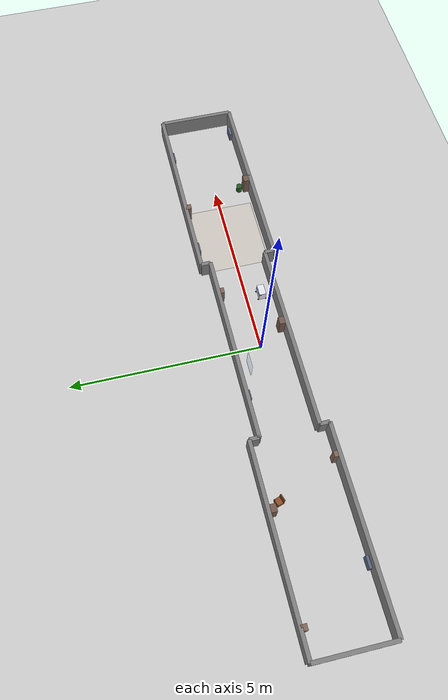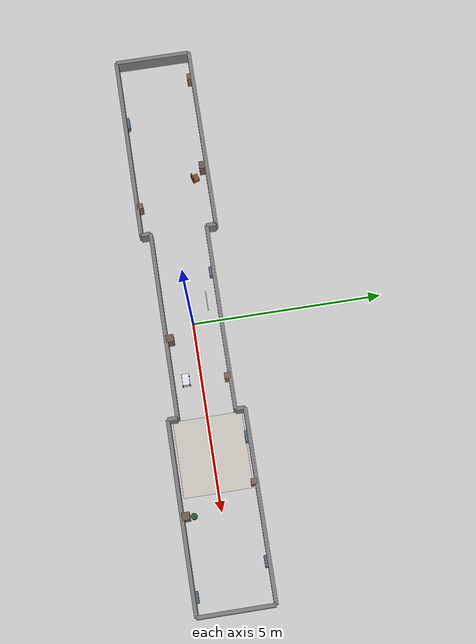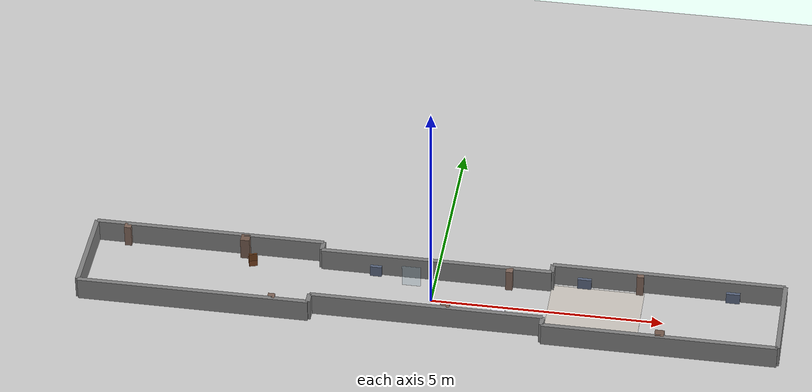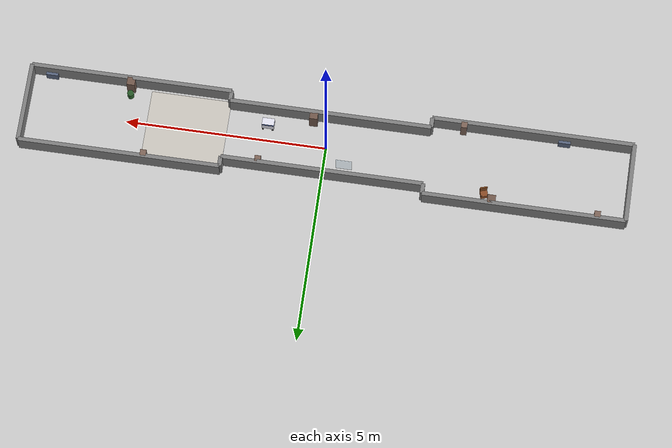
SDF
<?xml version="1.0" ?>
<sdf version="1.6">
  <world name="default">
    <plugin filename="libignition-gazebo-physics-system.so" name="ignition::gazebo::systems::Physics"/>
    <plugin filename="libignition-gazebo-user-commands-system.so" name="ignition::gazebo::systems::UserCommands"/>
    <plugin filename="libignition-gazebo-scene-broadcaster-system.so" name="ignition::gazebo::systems::SceneBroadcaster"/>
    <plugin filename="libignition-gazebo-imu-system.so" name="ignition::gazebo::systems::Imu"/>
    <plugin filename="libignition-gazebo-sensors-system.so" name="ignition::gazebo::systems::Sensors">
      <render_engine>ogre2</render_engine>
    </plugin>

    <light name="sun" type="directional">
      <pose>0 0 10 0 0.5 0</pose>
      <diffuse>1 1 1 1</diffuse>
      <specular>1 1 1 1</specular>
      <direction>-1 -1 -1</direction>
      <cast_shadows>true</cast_shadows>
    </light>

    <model name="ground_plane">
      <static>true</static>
      <link name="link">
        <collision name="collision">
          <geometry><plane><normal>0 0 1</normal><size>50 50</size></plane></geometry>
          <surface><friction><ode><mu>100</mu><mu2>50</mu2></ode></friction></surface>
        </collision>
        <visual name="visual">
          <geometry><plane><normal>0 0 1</normal><size>50 50</size></plane></geometry>
          <material>
            <ambient>0.8 0.8 0.8 1</ambient>
            <diffuse>0.8 0.8 0.8 1</diffuse>
            <specular>0.1 0.1 0.1 1</specular>
          </material>
        </visual>
      </link>
    </model>

    <!-- ===== WALLS ===== -->

    <!-- South wall: left section (x=-7.5 to -2.5, y=1.0, 2m wide) -->
    <model name="wall_south_left">
      <static>true</static>
      <pose>-5 1.0 0.25 0 0 0</pose>
      <link name="link">
        <collision name="collision"><geometry><box><size>5 0.1 0.5</size></box></geometry></collision>
        <visual name="visual">
          <geometry><box><size>5 0.1 0.5</size></box></geometry>
          <material><ambient>0.3 0.3 0.3 1</ambient><diffuse>0.5 0.5 0.5 1</diffuse><specular>0.1 0.1 0.1 1</specular></material>
        </visual>
      </link>
    </model>

    <!-- South wall: narrow section (x=-2.5 to +2.5, y=0.75, 1.5m wide) -->
    <model name="wall_south_narrow">
      <static>true</static>
      <pose>0 0.75 0.25 0 0 0</pose>
      <link name="link">
        <collision name="collision"><geometry><box><size>5 0.1 0.5</size></box></geometry></collision>
        <visual name="visual">
          <geometry><box><size>5 0.1 0.5</size></box></geometry>
          <material><ambient>0.3 0.3 0.3 1</ambient><diffuse>0.5 0.5 0.5 1</diffuse><specular>0.1 0.1 0.1 1</specular></material>
        </visual>
      </link>
    </model>

    <!-- South wall: right section (x=+2.5 to +7.5, y=1.0, 2m wide) -->
    <model name="wall_south_right">
      <static>true</static>
      <pose>5 1.0 0.25 0 0 0</pose>
      <link name="link">
        <collision name="collision"><geometry><box><size>5 0.1 0.5</size></box></geometry></collision>
        <visual name="visual">
          <geometry><box><size>5 0.1 0.5</size></box></geometry>
          <material><ambient>0.3 0.3 0.3 1</ambient><diffuse>0.5 0.5 0.5 1</diffuse><specular>0.1 0.1 0.1 1</specular></material>
        </visual>
      </link>
    </model>

    <!-- North wall: left section -->
    <model name="wall_north_left">
      <static>true</static>
      <pose>-5 -1.0 0.25 0 0 0</pose>
      <link name="link">
        <collision name="collision"><geometry><box><size>5 0.1 0.5</size></box></geometry></collision>
        <visual name="visual">
          <geometry><box><size>5 0.1 0.5</size></box></geometry>
          <material><ambient>0.3 0.3 0.3 1</ambient><diffuse>0.5 0.5 0.5 1</diffuse><specular>0.1 0.1 0.1 1</specular></material>
        </visual>
      </link>
    </model>

    <!-- North wall: narrow section -->
    <model name="wall_north_narrow">
      <static>true</static>
      <pose>0 -0.75 0.25 0 0 0</pose>
      <link name="link">
        <collision name="collision"><geometry><box><size>5 0.1 0.5</size></box></geometry></collision>
        <visual name="visual">
          <geometry><box><size>5 0.1 0.5</size></box></geometry>
          <material><ambient>0.3 0.3 0.3 1</ambient><diffuse>0.5 0.5 0.5 1</diffuse><specular>0.1 0.1 0.1 1</specular></material>
        </visual>
      </link>
    </model>

    <!-- North wall: right section -->
    <model name="wall_north_right">
      <static>true</static>
      <pose>5 -1.0 0.25 0 0 0</pose>
      <link name="link">
        <collision name="collision"><geometry><box><size>5 0.1 0.5</size></box></geometry></collision>
        <visual name="visual">
          <geometry><box><size>5 0.1 0.5</size></box></geometry>
          <material><ambient>0.3 0.3 0.3 1</ambient><diffuse>0.5 0.5 0.5 1</diffuse><specular>0.1 0.1 0.1 1</specular></material>
        </visual>
      </link>
    </model>

    <!-- Transition walls at width changes -->
    <model name="wall_trans_south_west">
      <static>true</static>
      <pose>-2.5 0.875 0.25 0 0 0</pose>
      <link name="link">
        <collision name="collision"><geometry><box><size>0.1 0.25 0.5</size></box></geometry></collision>
        <visual name="visual">
          <geometry><box><size>0.1 0.25 0.5</size></box></geometry>
          <material><ambient>0.3 0.3 0.3 1</ambient><diffuse>0.5 0.5 0.5 1</diffuse><specular>0.1 0.1 0.1 1</specular></material>
        </visual>
      </link>
    </model>
    <model name="wall_trans_south_east">
      <static>true</static>
      <pose>2.5 0.875 0.25 0 0 0</pose>
      <link name="link">
        <collision name="collision"><geometry><box><size>0.1 0.25 0.5</size></box></geometry></collision>
        <visual name="visual">
          <geometry><box><size>0.1 0.25 0.5</size></box></geometry>
          <material><ambient>0.3 0.3 0.3 1</ambient><diffuse>0.5 0.5 0.5 1</diffuse><specular>0.1 0.1 0.1 1</specular></material>
        </visual>
      </link>
    </model>
    <model name="wall_trans_north_west">
      <static>true</static>
      <pose>-2.5 -0.875 0.25 0 0 0</pose>
      <link name="link">
        <collision name="collision"><geometry><box><size>0.1 0.25 0.5</size></box></geometry></collision>
        <visual name="visual">
          <geometry><box><size>0.1 0.25 0.5</size></box></geometry>
          <material><ambient>0.3 0.3 0.3 1</ambient><diffuse>0.5 0.5 0.5 1</diffuse><specular>0.1 0.1 0.1 1</specular></material>
        </visual>
      </link>
    </model>
    <model name="wall_trans_north_east">
      <static>true</static>
      <pose>2.5 -0.875 0.25 0 0 0</pose>
      <link name="link">
        <collision name="collision"><geometry><box><size>0.1 0.25 0.5</size></box></geometry></collision>
        <visual name="visual">
          <geometry><box><size>0.1 0.25 0.5</size></box></geometry>
          <material><ambient>0.3 0.3 0.3 1</ambient><diffuse>0.5 0.5 0.5 1</diffuse><specular>0.1 0.1 0.1 1</specular></material>
        </visual>
      </link>
    </model>

    <!-- West end wall -->
    <model name="wall_west">
      <static>true</static>
      <pose>-7.5 0 0.25 0 0 0</pose>
      <link name="link">
        <collision name="collision"><geometry><box><size>0.1 2.0 0.5</size></box></geometry></collision>
        <visual name="visual">
          <geometry><box><size>0.1 2.0 0.5</size></box></geometry>
          <material><ambient>0.3 0.3 0.3 1</ambient><diffuse>0.5 0.5 0.5 1</diffuse><specular>0.1 0.1 0.1 1</specular></material>
        </visual>
      </link>
    </model>

    <!-- East end wall -->
    <model name="wall_east">
      <static>true</static>
      <pose>7.5 0 0.25 0 0 0</pose>
      <link name="link">
        <collision name="collision"><geometry><box><size>0.1 2.0 0.5</size></box></geometry></collision>
        <visual name="visual">
          <geometry><box><size>0.1 2.0 0.5</size></box></geometry>
          <material><ambient>0.3 0.3 0.3 1</ambient><diffuse>0.5 0.5 0.5 1</diffuse><specular>0.1 0.1 0.1 1</specular></material>
        </visual>
      </link>
    </model>

    <!-- ===== FEATURES: LEFT SECTION (x=-7.5 to -2.5) ===== -->
    <!-- Pattern: 2 south features, 2 north features, aperiodic gaps -->

    <!-- South wall: pillar at -6.8, large-pillar at -4.2 -->
    <model name="feat_1">
      <static>true</static>
      <pose>-6.8 0.925 0.25 0 0 0</pose>
      <link name="link">
        <collision name="collision"><geometry><box><size>0.15 0.15 0.5</size></box></geometry></collision>
        <visual name="visual">
          <geometry><box><size>0.15 0.15 0.5</size></box></geometry>
          <material><ambient>0.4 0.3 0.25 1</ambient><diffuse>0.5 0.4 0.35 1</diffuse></material>
        </visual>
      </link>
    </model>
    <model name="feat_2">
      <static>true</static>
      <pose>-4.2 0.90 0.25 0 0 0</pose>
      <link name="link">
        <collision name="collision"><geometry><box><size>0.20 0.20 0.5</size></box></geometry></collision>
        <visual name="visual">
          <geometry><box><size>0.20 0.20 0.5</size></box></geometry>
          <material><ambient>0.35 0.25 0.20 1</ambient><diffuse>0.45 0.35 0.30 1</diffuse></material>
        </visual>
      </link>
    </model>

    <!-- North wall: cabinet at -5.8, pillar at -3.3 -->
    <model name="feat_3">
      <static>true</static>
      <pose>-5.8 -0.94 0.125 0 0 0</pose>
      <link name="link">
        <collision name="collision"><geometry><box><size>0.3 0.12 0.25</size></box></geometry></collision>
        <visual name="visual">
          <geometry><box><size>0.3 0.12 0.25</size></box></geometry>
          <material><ambient>0.25 0.3 0.4 1</ambient><diffuse>0.35 0.4 0.5 1</diffuse></material>
        </visual>
      </link>
    </model>
    <model name="feat_4">
      <static>true</static>
      <pose>-3.3 -0.925 0.25 0 0 0</pose>
      <link name="link">
        <collision name="collision"><geometry><box><size>0.15 0.15 0.5</size></box></geometry></collision>
        <visual name="visual">
          <geometry><box><size>0.15 0.15 0.5</size></box></geometry>
          <material><ambient>0.4 0.3 0.25 1</ambient><diffuse>0.5 0.4 0.35 1</diffuse></material>
        </visual>
      </link>
    </model>

    <!-- ===== FEATURES: NARROW SECTION (x=-2.5 to +2.5) ===== -->
    <!-- Previously had ZERO features — added 3 to break symmetry -->

    <!-- South wall: cabinet at -1.3, pillar at 1.6 -->
    <model name="feat_5">
      <static>true</static>
      <pose>-1.3 0.69 0.125 0 0 0</pose>
      <link name="link">
        <collision name="collision"><geometry><box><size>0.25 0.12 0.25</size></box></geometry></collision>
        <visual name="visual">
          <geometry><box><size>0.25 0.12 0.25</size></box></geometry>
          <material><ambient>0.25 0.3 0.4 1</ambient><diffuse>0.35 0.4 0.5 1</diffuse></material>
        </visual>
      </link>
    </model>
    <model name="feat_6">
      <static>true</static>
      <pose>1.6 0.675 0.25 0 0 0</pose>
      <link name="link">
        <collision name="collision"><geometry><box><size>0.15 0.15 0.5</size></box></geometry></collision>
        <visual name="visual">
          <geometry><box><size>0.15 0.15 0.5</size></box></geometry>
          <material><ambient>0.4 0.3 0.25 1</ambient><diffuse>0.5 0.4 0.35 1</diffuse></material>
        </visual>
      </link>
    </model>

    <!-- North wall: large-pillar at 0.4 -->
    <model name="feat_7">
      <static>true</static>
      <pose>0.4 -0.65 0.25 0 0 0</pose>
      <link name="link">
        <collision name="collision"><geometry><box><size>0.20 0.20 0.5</size></box></geometry></collision>
        <visual name="visual">
          <geometry><box><size>0.20 0.20 0.5</size></box></geometry>
          <material><ambient>0.35 0.25 0.20 1</ambient><diffuse>0.45 0.35 0.30 1</diffuse></material>
        </visual>
      </link>
    </model>

    <!-- ===== FEATURES: RIGHT SECTION (x=+2.5 to +7.5) ===== -->
    <!-- DIFFERENT pattern from left: cabinet-pillar-cabinet on south, pillar on north -->
    <!-- Gaps: 1.2m, 2.0m (different from left's 2.6m gap) -->

    <!-- South wall: cabinet at 3.2, pillar at 4.4, cabinet at 6.4 -->
    <model name="feat_8">
      <static>true</static>
      <pose>3.2 0.94 0.125 0 0 0</pose>
      <link name="link">
        <collision name="collision"><geometry><box><size>0.3 0.12 0.25</size></box></geometry></collision>
        <visual name="visual">
          <geometry><box><size>0.3 0.12 0.25</size></box></geometry>
          <material><ambient>0.25 0.3 0.4 1</ambient><diffuse>0.35 0.4 0.5 1</diffuse></material>
        </visual>
      </link>
    </model>
    <model name="feat_9">
      <static>true</static>
      <pose>4.4 0.925 0.25 0 0 0</pose>
      <link name="link">
        <collision name="collision"><geometry><box><size>0.15 0.15 0.5</size></box></geometry></collision>
        <visual name="visual">
          <geometry><box><size>0.15 0.15 0.5</size></box></geometry>
          <material><ambient>0.4 0.3 0.25 1</ambient><diffuse>0.5 0.4 0.35 1</diffuse></material>
        </visual>
      </link>
    </model>
    <model name="feat_10">
      <static>true</static>
      <pose>6.4 0.94 0.125 0 0 0</pose>
      <link name="link">
        <collision name="collision"><geometry><box><size>0.3 0.12 0.25</size></box></geometry></collision>
        <visual name="visual">
          <geometry><box><size>0.3 0.12 0.25</size></box></geometry>
          <material><ambient>0.25 0.3 0.4 1</ambient><diffuse>0.35 0.4 0.5 1</diffuse></material>
        </visual>
      </link>
    </model>

    <!-- North wall: large-pillar at 5.0, cabinet at 7.0 -->
    <model name="feat_11">
      <static>true</static>
      <pose>5.0 -0.90 0.25 0 0 0</pose>
      <link name="link">
        <collision name="collision"><geometry><box><size>0.20 0.20 0.5</size></box></geometry></collision>
        <visual name="visual">
          <geometry><box><size>0.20 0.20 0.5</size></box></geometry>
          <material><ambient>0.35 0.25 0.20 1</ambient><diffuse>0.45 0.35 0.30 1</diffuse></material>
        </visual>
      </link>
    </model>
    <model name="feat_12">
      <static>true</static>
      <pose>7.0 -0.94 0.125 0 0 0</pose>
      <link name="link">
        <collision name="collision"><geometry><box><size>0.3 0.12 0.25</size></box></geometry></collision>
        <visual name="visual">
          <geometry><box><size>0.3 0.12 0.25</size></box></geometry>
          <material><ambient>0.25 0.3 0.4 1</ambient><diffuse>0.35 0.4 0.5 1</diffuse></material>
        </visual>
      </link>
    </model>
    <!-- ===== FURNITURE: VISUAL REALISM + DEPTH CHALLENGES ===== -->

    <!-- Chair: brown box (seat) + backrest, near south wall in left section.
         Leaves ~0.6m clearance on north side. -->
    <model name="chair">
      <static>true</static>
      <pose>-4.0 0.65 0 0 0 0.3</pose>
      <link name="link">
        <!-- Seat -->
        <collision name="seat_col"><geometry><box><size>0.18 0.18 0.15</size></box></geometry>
          <pose>0 0 0.075 0 0 0</pose></collision>
        <visual name="seat_vis"><geometry><box><size>0.18 0.18 0.15</size></box></geometry>
          <pose>0 0 0.075 0 0 0</pose>
          <material><ambient>0.45 0.25 0.10 1</ambient><diffuse>0.55 0.30 0.15 1</diffuse><specular>0.05 0.03 0.01 1</specular></material>
        </visual>
        <!-- Backrest -->
        <collision name="back_col"><geometry><box><size>0.18 0.03 0.18</size></box></geometry>
          <pose>0 -0.075 0.24 0 0 0</pose></collision>
        <visual name="back_vis"><geometry><box><size>0.18 0.03 0.18</size></box></geometry>
          <pose>0 -0.075 0.24 0 0 0</pose>
          <material><ambient>0.40 0.22 0.08 1</ambient><diffuse>0.50 0.28 0.12 1</diffuse><specular>0.05 0.03 0.01 1</specular></material>
        </visual>
        <!-- Legs (4x) -->
        <visual name="leg1"><geometry><cylinder><radius>0.01</radius><length>0.15</length></cylinder></geometry>
          <pose>0.07 0.07 0.075 0 0 0</pose>
          <material><ambient>0.2 0.2 0.2 1</ambient><diffuse>0.3 0.3 0.3 1</diffuse></material></visual>
        <visual name="leg2"><geometry><cylinder><radius>0.01</radius><length>0.15</length></cylinder></geometry>
          <pose>-0.07 0.07 0.075 0 0 0</pose>
          <material><ambient>0.2 0.2 0.2 1</ambient><diffuse>0.3 0.3 0.3 1</diffuse></material></visual>
        <visual name="leg3"><geometry><cylinder><radius>0.01</radius><length>0.15</length></cylinder></geometry>
          <pose>0.07 -0.07 0.075 0 0 0</pose>
          <material><ambient>0.2 0.2 0.2 1</ambient><diffuse>0.3 0.3 0.3 1</diffuse></material></visual>
        <visual name="leg4"><geometry><cylinder><radius>0.01</radius><length>0.15</length></cylinder></geometry>
          <pose>-0.07 -0.07 0.075 0 0 0</pose>
          <material><ambient>0.2 0.2 0.2 1</ambient><diffuse>0.3 0.3 0.3 1</diffuse></material></visual>
      </link>
    </model>

    <!-- Hospital cart: white/blue box on wheels, narrow section near north wall.
         Leaves ~0.7m clearance. -->
    <model name="hospital_cart">
      <static>true</static>
      <pose>1.5 -0.40 0 0 0 0</pose>
      <link name="link">
        <!-- Cart body -->
        <collision name="body_col"><geometry><box><size>0.30 0.18 0.25</size></box></geometry>
          <pose>0 0 0.175 0 0 0</pose></collision>
        <visual name="body_vis"><geometry><box><size>0.30 0.18 0.25</size></box></geometry>
          <pose>0 0 0.175 0 0 0</pose>
          <material><ambient>0.85 0.85 0.90 1</ambient><diffuse>0.90 0.90 0.95 1</diffuse><specular>0.3 0.3 0.3 1</specular></material>
        </visual>
        <!-- Blue stripe -->
        <visual name="stripe_vis"><geometry><box><size>0.30 0.19 0.03</size></box></geometry>
          <pose>0 0 0.26 0 0 0</pose>
          <material><ambient>0.15 0.25 0.55 1</ambient><diffuse>0.20 0.35 0.70 1</diffuse></material>
        </visual>
        <!-- Wheels (4x) -->
        <visual name="wh1"><geometry><cylinder><radius>0.02</radius><length>0.02</length></cylinder></geometry>
          <pose>0.12 0.10 0.02 1.5707 0 0</pose>
          <material><ambient>0.15 0.15 0.15 1</ambient><diffuse>0.2 0.2 0.2 1</diffuse></material></visual>
        <visual name="wh2"><geometry><cylinder><radius>0.02</radius><length>0.02</length></cylinder></geometry>
          <pose>-0.12 0.10 0.02 1.5707 0 0</pose>
          <material><ambient>0.15 0.15 0.15 1</ambient><diffuse>0.2 0.2 0.2 1</diffuse></material></visual>
        <visual name="wh3"><geometry><cylinder><radius>0.02</radius><length>0.02</length></cylinder></geometry>
          <pose>0.12 -0.10 0.02 1.5707 0 0</pose>
          <material><ambient>0.15 0.15 0.15 1</ambient><diffuse>0.2 0.2 0.2 1</diffuse></material></visual>
        <visual name="wh4"><geometry><cylinder><radius>0.02</radius><length>0.02</length></cylinder></geometry>
          <pose>-0.12 -0.10 0.02 1.5707 0 0</pose>
          <material><ambient>0.15 0.15 0.15 1</ambient><diffuse>0.2 0.2 0.2 1</diffuse></material></visual>
      </link>
    </model>

    <!-- Trash can: dark green cylinder, right section near north wall. -->
    <model name="trash_can">
      <static>true</static>
      <pose>5.0 -0.70 0.10 0 0 0</pose>
      <link name="link">
        <collision name="col"><geometry><cylinder><radius>0.08</radius><length>0.20</length></cylinder></geometry></collision>
        <visual name="vis"><geometry><cylinder><radius>0.08</radius><length>0.20</length></cylinder></geometry>
          <material><ambient>0.10 0.25 0.10 1</ambient><diffuse>0.15 0.35 0.15 1</diffuse><specular>0.05 0.05 0.05 1</specular></material>
        </visual>
      </link>
    </model>

    <model name="glass_panel">
      <static>true</static>
      <pose>-0.5 0.45 0.25 0 0 0</pose>
      <link name="link">
        <collision name="col"><geometry><box><size>0.40 0.02 0.50</size></box></geometry></collision>
        <visual name="vis"><geometry><box><size>0.40 0.02 0.50</size></box></geometry>
          <material>
            <ambient>0.6 0.8 0.9 0.3</ambient>
            <diffuse>0.7 0.85 0.95 0.3</diffuse>
            <specular>0.9 0.9 0.95 1</specular>
          </material>
        </visual>
      </link>
    </model>

    <!-- Reflective floor patch: high-specular ground section in right corridor.
         Simulates polished/waxed hospital floor that causes sensor glare. -->
    <model name="reflective_floor">
      <static>true</static>
      <pose>3.5 0.0 0.001 0 0 0</pose>
      <link name="link">
        <collision name="col"><geometry><box><size>2.0 1.8 0.002</size></box></geometry></collision>
        <visual name="vis"><geometry><box><size>2.0 1.8 0.002</size></box></geometry>
          <material>
            <ambient>0.75 0.72 0.68 1</ambient>
            <diffuse>0.80 0.78 0.75 1</diffuse>
            <specular>0.95 0.95 0.90 1</specular>
          </material>
        </visual>
      </link>
    </model>

  </world>
</sdf>
